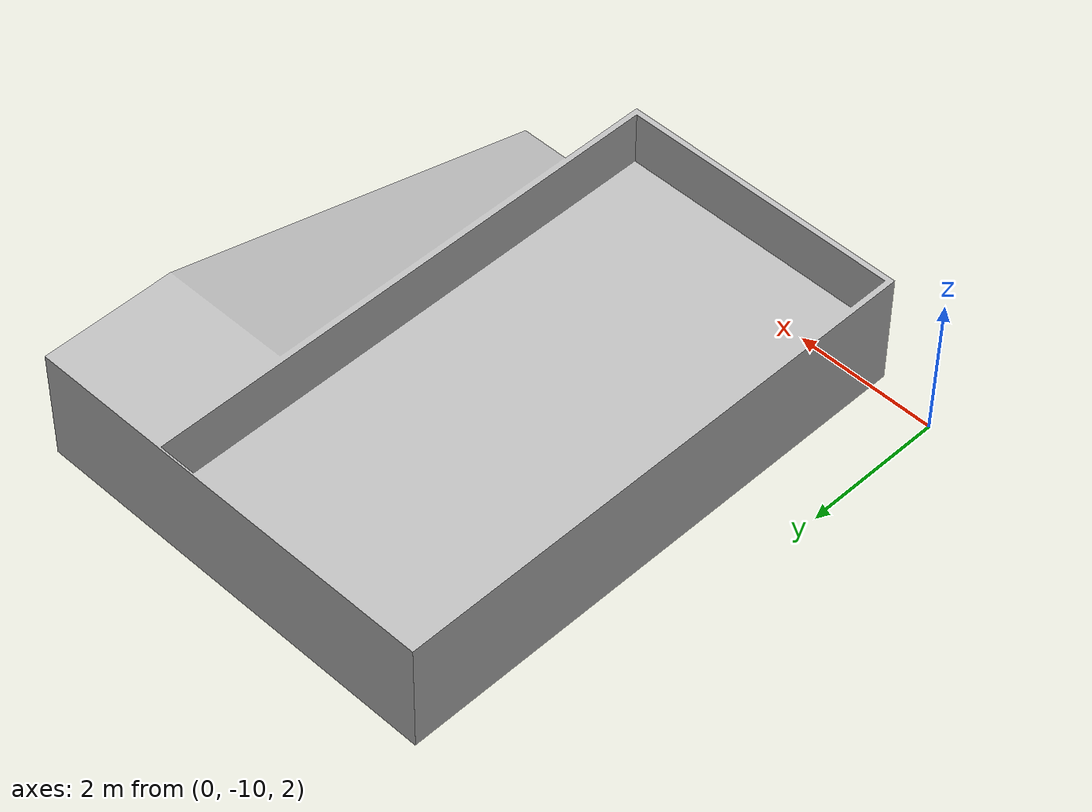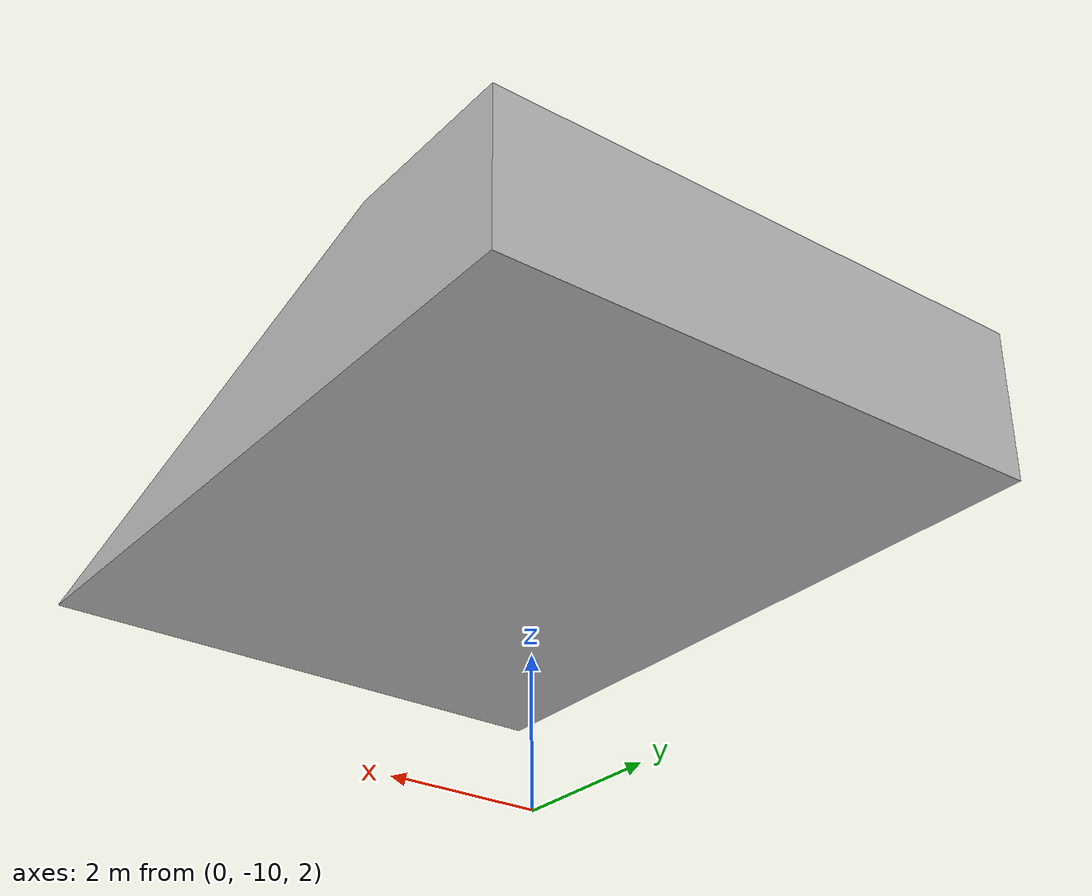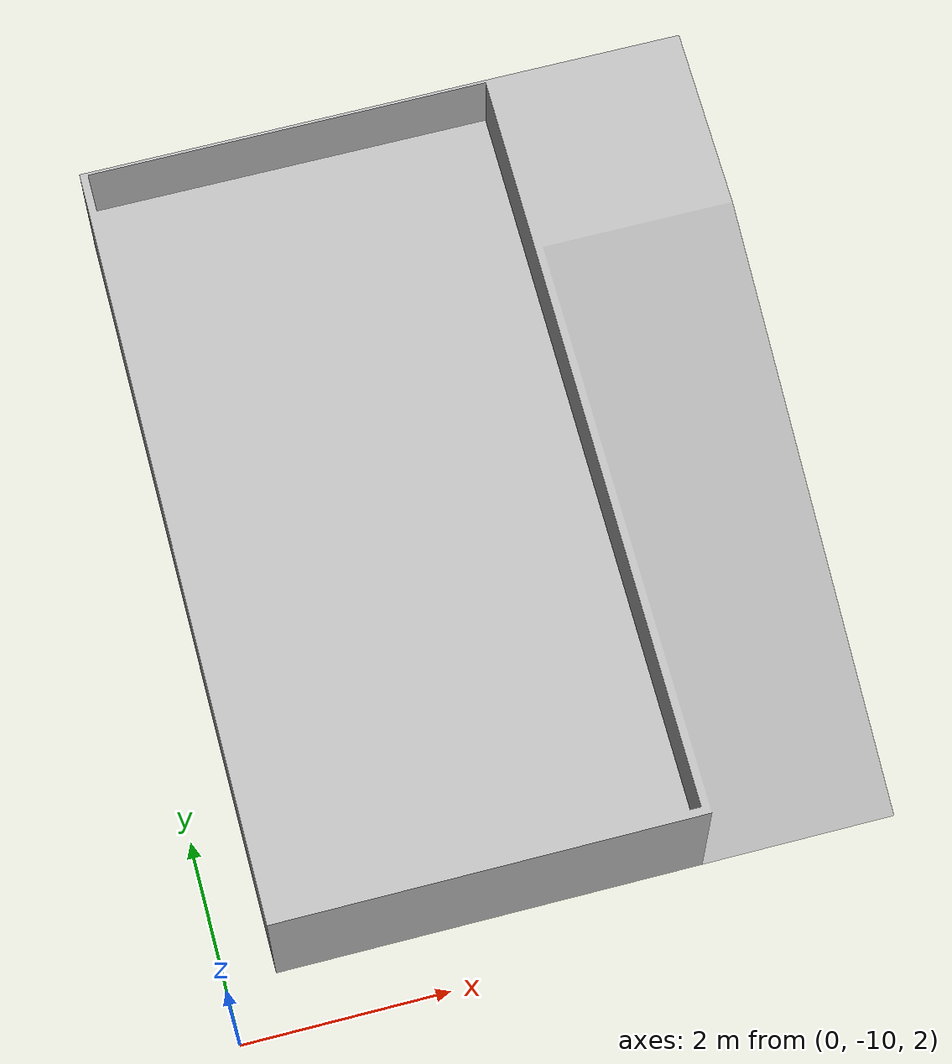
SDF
<sdf version='1.4'>
  <model name='LunArena2'>
    <link name='arena_base_link'>
      <pose>0 0 0 0 -0 0</pose>
      <inertial>
        <pose>3.46639 -5.50882 3.2974 0 -0 0</pose>
        <mass>39247.1</mass>
        <inertia>
          <ixx>181480</ixx>
          <ixy>29643.3</ixy>
          <ixz>4652.6</ixz>
          <iyy>120194</iyy>
          <iyz>5803.15</iyz>
          <izz>291998</izz>
        </inertia>
      </inertial>
      <collision name='arena_base_link_collision'>
        <pose>0 0 0 0 -0 0</pose>
        <geometry>
          <mesh>
            <scale>1 1 1</scale>
            <uri>model://LunArena2/meshes/arena_base_link.STL</uri>
          </mesh>
        </geometry>
      </collision>
      <visual name='arena_base_link_visual'>
        <pose>0 0 0 0 -0 0</pose>
        <geometry>
          <mesh>
            <scale>1 1 1</scale>
            <uri>model://LunArena2/meshes/arena_base_link.STL</uri>
          </mesh>
        </geometry>
      </visual>
      <velocity_decay>
        <linear>0</linear>
        <angular>0</angular>
      </velocity_decay>
    </link>
  </model>
</sdf>
